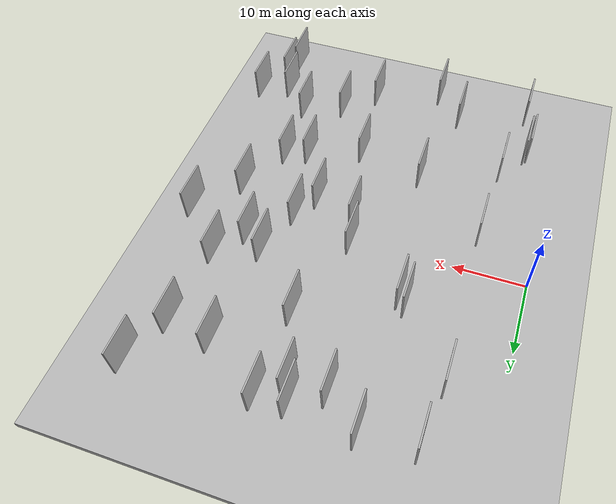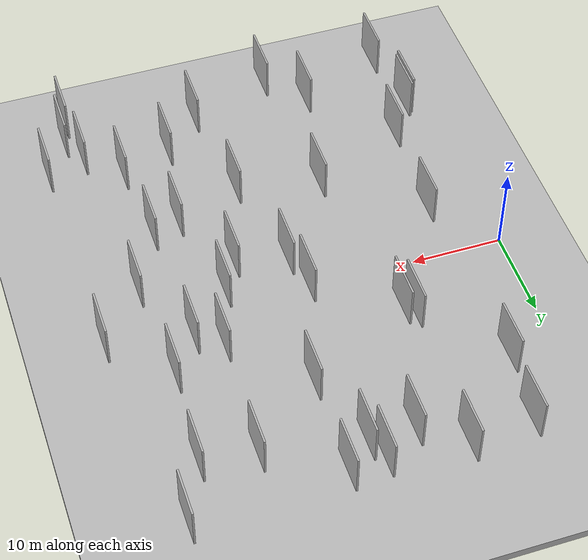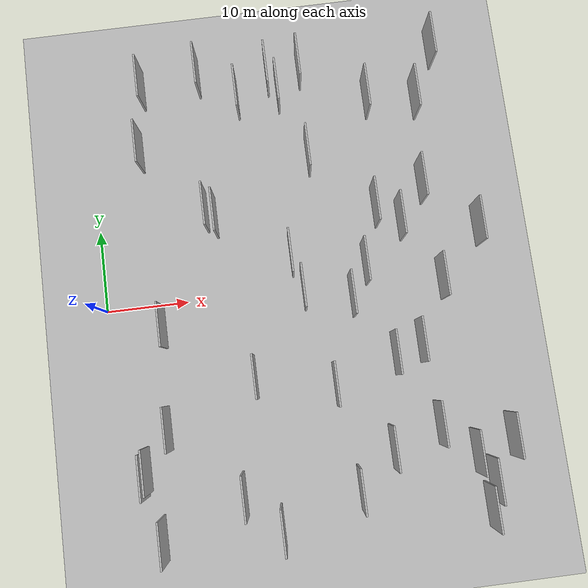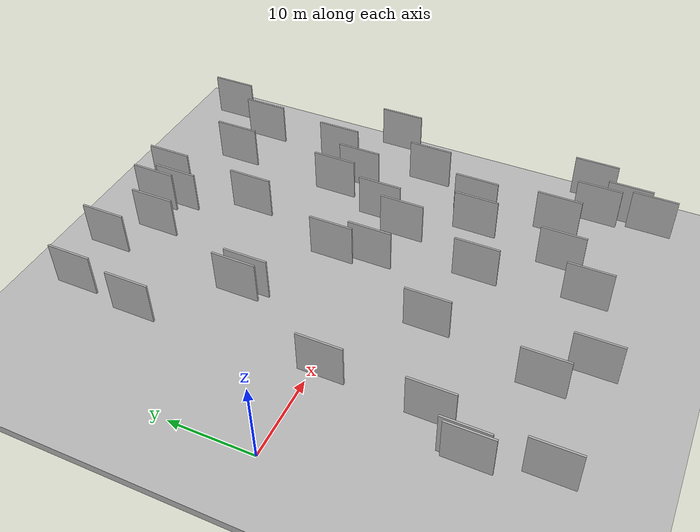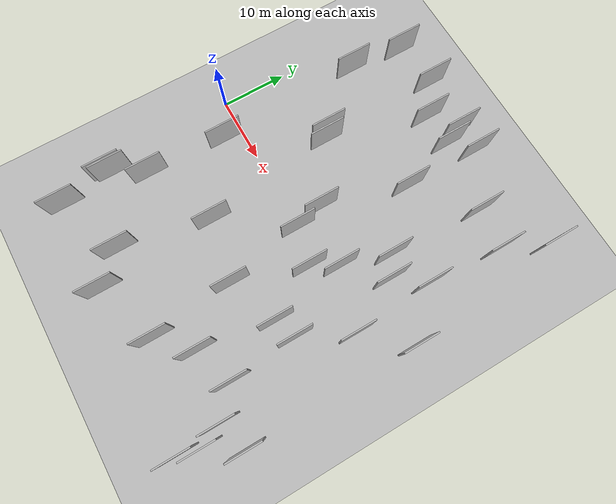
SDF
<?xml version="1.0" encoding="utf-8"?>

<sdf version="1.6">

   <world name="default">

      <gui fullscreen="0">

         <camera name="user_camera">

            <pose>-15 0 4.57585 0 0 0</pose>

            <view_controller>orbit</view_controller>

         </camera>

      </gui>

      <scene>

         <sky>

           <clouds>

             <speed>12</speed>

           </clouds>

         </sky>

         <ambient>0.4 0.4 0.4 1</ambient>

         <background>0.7 0.7 0.7 1</background>

         <shadows>1</shadows>

      </scene>

      <gravity>0 0 -9.8066</gravity>

      <magnetic_field>6e-06 2.3e-05 -4.2e-05</magnetic_field>

      <physics default="0" name="default_physics" type="ode">

         <ode>

            <solver>

               <type>quick</type>

               <iters>10</iters>

               <sor>1.0</sor>

               <use_dynamic_moi_rescaling>0</use_dynamic_moi_rescaling>

            </solver>

            <constraints>

               <cfm>0</cfm>

               <erp>0.2</erp>

               <contact_max_correcting_vel>100</contact_max_correcting_vel>

               <contact_surface_layer>0.001</contact_surface_layer>

            </constraints>

         </ode>

         <max_step_size>0.004</max_step_size>

         <real_time_factor>1</real_time_factor>

         <real_time_update_rate>250</real_time_update_rate>

      </physics>

      <light name="sun" type="directional">

         <cast_shadows>1</cast_shadows>

         <pose>0 0 10 0 0 0</pose>

         <diffuse>0.8 0.8 0.8 1</diffuse>

         <specular>0.2 0.2 0.2 1</specular>

         <attenuation>

            <range>1000</range>

            <constant>0.9</constant>

            <linear>0.01</linear>

            <quadratic>0.001</quadratic>

         </attenuation>

         <direction>-0.5 0.1 -0.9</direction>

      </light>

      <include>

         <name>ground_plane_1</name>

         <uri>model://HANNAS_ground_plane</uri>

         <pose>0 0 0  0 0 0</pose>

      </include>

      <include>

         <name>ground_plane_2</name>

         <uri>model://HANNAS_ground_plane</uri>

         <pose>100 0 0  0 0 0</pose>

      </include>

      <model name="HANNAS_wall_1">

         <static>1</static>

         <pose frame="">7.9662 25.6278 5.0 0.000000 0.000000 1.570796</pose>

         <link name="link">

            <pose frame="">0 0 2.50 0 0 0</pose>

            <collision name="collision">

               <geometry>

                  <box>

                     <size>5.00 0.2 5.00</size>

                  </box>

               </geometry>

               <max_contacts>10</max_contacts>

               <surface>

                  <contact>

                     <ode/>

                  </contact>

                  <bounce/>

                  <friction>

                     <torsional>

                        <ode/>

                     </torsional>

                     <ode/>

                  </friction>

               </surface>

            </collision>

            <visual name="visual">

               <cast_shadows>0</cast_shadows>

               <geometry>

                  <box>

                     <size>5.00 0.2 5.00</size>

                  </box>

               </geometry>

               <material>

                  <script>

                     <uri>model://HANNAS_wall/materials/scripts</uri>

                     <uri>model://HANNAS_wall/materials/textures</uri>

                     <name>vrc/HANNAS_wall</name>

                  </script>

               </material>

            </visual>

            <self_collide>0</self_collide>

            <enable_wind>0</enable_wind>

            <kinematic>0</kinematic>

         </link>

      </model>

      <model name="HANNAS_wall_2">

         <static>1</static>

         <pose frame="">17.4288 -10.1757 5.0 0.000000 0.000000 1.570796</pose>

         <link name="link">

            <pose frame="">0 0 2.50 0 0 0</pose>

            <collision name="collision">

               <geometry>

                  <box>

                     <size>5.00 0.2 5.00</size>

                  </box>

               </geometry>

               <max_contacts>10</max_contacts>

               <surface>

                  <contact>

                     <ode/>

                  </contact>

                  <bounce/>

                  <friction>

                     <torsional>

                        <ode/>

                     </torsional>

                     <ode/>

                  </friction>

               </surface>

            </collision>

            <visual name="visual">

               <cast_shadows>0</cast_shadows>

               <geometry>

                  <box>

                     <size>5.00 0.2 5.00</size>

                  </box>

               </geometry>

               <material>

                  <script>

                     <uri>model://HANNAS_wall/materials/scripts</uri>

                     <uri>model://HANNAS_wall/materials/textures</uri>

                     <name>vrc/HANNAS_wall</name>

                  </script>

               </material>

            </visual>

            <self_collide>0</self_collide>

            <enable_wind>0</enable_wind>

            <kinematic>0</kinematic>

         </link>

      </model>

      <model name="HANNAS_wall_3">

         <static>1</static>

         <pose frame="">31.7390 -19.7800 5.0 0.000000 0.000000 1.570796</pose>

         <link name="link">

            <pose frame="">0 0 2.50 0 0 0</pose>

            <collision name="collision">

               <geometry>

                  <box>

                     <size>5.00 0.2 5.00</size>

                  </box>

               </geometry>

               <max_contacts>10</max_contacts>

               <surface>

                  <contact>

                     <ode/>

                  </contact>

                  <bounce/>

                  <friction>

                     <torsional>

                        <ode/>

                     </torsional>

                     <ode/>

                  </friction>

               </surface>

            </collision>

            <visual name="visual">

               <cast_shadows>0</cast_shadows>

               <geometry>

                  <box>

                     <size>5.00 0.2 5.00</size>

                  </box>

               </geometry>

               <material>

                  <script>

                     <uri>model://HANNAS_wall/materials/scripts</uri>

                     <uri>model://HANNAS_wall/materials/textures</uri>

                     <name>vrc/HANNAS_wall</name>

                  </script>

               </material>

            </visual>

            <self_collide>0</self_collide>

            <enable_wind>0</enable_wind>

            <kinematic>0</kinematic>

         </link>

      </model>

      <model name="HANNAS_wall_4">

         <static>1</static>

         <pose frame="">14.9542 8.9273 5.0 0.000000 0.000000 1.570796</pose>

         <link name="link">

            <pose frame="">0 0 2.50 0 0 0</pose>

            <collision name="collision">

               <geometry>

                  <box>

                     <size>5.00 0.2 5.00</size>

                  </box>

               </geometry>

               <max_contacts>10</max_contacts>

               <surface>

                  <contact>

                     <ode/>

                  </contact>

                  <bounce/>

                  <friction>

                     <torsional>

                        <ode/>

                     </torsional>

                     <ode/>

                  </friction>

               </surface>

            </collision>

            <visual name="visual">

               <cast_shadows>0</cast_shadows>

               <geometry>

                  <box>

                     <size>5.00 0.2 5.00</size>

                  </box>

               </geometry>

               <material>

                  <script>

                     <uri>model://HANNAS_wall/materials/scripts</uri>

                     <uri>model://HANNAS_wall/materials/textures</uri>

                     <name>vrc/HANNAS_wall</name>

                  </script>

               </material>

            </visual>

            <self_collide>0</self_collide>

            <enable_wind>0</enable_wind>

            <kinematic>0</kinematic>

         </link>

      </model>

      <model name="HANNAS_wall_5">

         <static>1</static>

         <pose frame="">26.3158 -12.0907 5.0 0.000000 0.000000 1.570796</pose>

         <link name="link">

            <pose frame="">0 0 2.50 0 0 0</pose>

            <collision name="collision">

               <geometry>

                  <box>

                     <size>5.00 0.2 5.00</size>

                  </box>

               </geometry>

               <max_contacts>10</max_contacts>

               <surface>

                  <contact>

                     <ode/>

                  </contact>

                  <bounce/>

                  <friction>

                     <torsional>

                        <ode/>

                     </torsional>

                     <ode/>

                  </friction>

               </surface>

            </collision>

            <visual name="visual">

               <cast_shadows>0</cast_shadows>

               <geometry>

                  <box>

                     <size>5.00 0.2 5.00</size>

                  </box>

               </geometry>

               <material>

                  <script>

                     <uri>model://HANNAS_wall/materials/scripts</uri>

                     <uri>model://HANNAS_wall/materials/textures</uri>

                     <name>vrc/HANNAS_wall</name>

                  </script>

               </material>

            </visual>

            <self_collide>0</self_collide>

            <enable_wind>0</enable_wind>

            <kinematic>0</kinematic>

         </link>

      </model>

      <model name="HANNAS_wall_6">

         <static>1</static>

         <pose frame="">44.9764 4.1764 5.0 0.000000 0.000000 1.570796</pose>

         <link name="link">

            <pose frame="">0 0 2.50 0 0 0</pose>

            <collision name="collision">

               <geometry>

                  <box>

                     <size>5.00 0.2 5.00</size>

                  </box>

               </geometry>

               <max_contacts>10</max_contacts>

               <surface>

                  <contact>

                     <ode/>

                  </contact>

                  <bounce/>

                  <friction>

                     <torsional>

                        <ode/>

                     </torsional>

                     <ode/>

                  </friction>

               </surface>

            </collision>

            <visual name="visual">

               <cast_shadows>0</cast_shadows>

               <geometry>

                  <box>

                     <size>5.00 0.2 5.00</size>

                  </box>

               </geometry>

               <material>

                  <script>

                     <uri>model://HANNAS_wall/materials/scripts</uri>

                     <uri>model://HANNAS_wall/materials/textures</uri>

                     <name>vrc/HANNAS_wall</name>

                  </script>

               </material>

            </visual>

            <self_collide>0</self_collide>

            <enable_wind>0</enable_wind>

            <kinematic>0</kinematic>

         </link>

      </model>

      <model name="HANNAS_wall_7">

         <static>1</static>

         <pose frame="">34.2695 21.2413 5.0 0.000000 0.000000 1.570796</pose>

         <link name="link">

            <pose frame="">0 0 2.50 0 0 0</pose>

            <collision name="collision">

               <geometry>

                  <box>

                     <size>5.00 0.2 5.00</size>

                  </box>

               </geometry>

               <max_contacts>10</max_contacts>

               <surface>

                  <contact>

                     <ode/>

                  </contact>

                  <bounce/>

                  <friction>

                     <torsional>

                        <ode/>

                     </torsional>

                     <ode/>

                  </friction>

               </surface>

            </collision>

            <visual name="visual">

               <cast_shadows>0</cast_shadows>

               <geometry>

                  <box>

                     <size>5.00 0.2 5.00</size>

                  </box>

               </geometry>

               <material>

                  <script>

                     <uri>model://HANNAS_wall/materials/scripts</uri>

                     <uri>model://HANNAS_wall/materials/textures</uri>

                     <name>vrc/HANNAS_wall</name>

                  </script>

               </material>

            </visual>

            <self_collide>0</self_collide>

            <enable_wind>0</enable_wind>

            <kinematic>0</kinematic>

         </link>

      </model>

      <model name="HANNAS_wall_8">

         <static>1</static>

         <pose frame="">31.4696 1.2209 5.0 0.000000 0.000000 1.570796</pose>

         <link name="link">

            <pose frame="">0 0 2.50 0 0 0</pose>

            <collision name="collision">

               <geometry>

                  <box>

                     <size>5.00 0.2 5.00</size>

                  </box>

               </geometry>

               <max_contacts>10</max_contacts>

               <surface>

                  <contact>

                     <ode/>

                  </contact>

                  <bounce/>

                  <friction>

                     <torsional>

                        <ode/>

                     </torsional>

                     <ode/>

                  </friction>

               </surface>

            </collision>

            <visual name="visual">

               <cast_shadows>0</cast_shadows>

               <geometry>

                  <box>

                     <size>5.00 0.2 5.00</size>

                  </box>

               </geometry>

               <material>

                  <script>

                     <uri>model://HANNAS_wall/materials/scripts</uri>

                     <uri>model://HANNAS_wall/materials/textures</uri>

                     <name>vrc/HANNAS_wall</name>

                  </script>

               </material>

            </visual>

            <self_collide>0</self_collide>

            <enable_wind>0</enable_wind>

            <kinematic>0</kinematic>

         </link>

      </model>

      <model name="HANNAS_wall_9">

         <static>1</static>

         <pose frame="">13.9549 9.7261 5.0 0.000000 0.000000 1.570796</pose>

         <link name="link">

            <pose frame="">0 0 2.50 0 0 0</pose>

            <collision name="collision">

               <geometry>

                  <box>

                     <size>5.00 0.2 5.00</size>

                  </box>

               </geometry>

               <max_contacts>10</max_contacts>

               <surface>

                  <contact>

                     <ode/>

                  </contact>

                  <bounce/>

                  <friction>

                     <torsional>

                        <ode/>

                     </torsional>

                     <ode/>

                  </friction>

               </surface>

            </collision>

            <visual name="visual">

               <cast_shadows>0</cast_shadows>

               <geometry>

                  <box>

                     <size>5.00 0.2 5.00</size>

                  </box>

               </geometry>

               <material>

                  <script>

                     <uri>model://HANNAS_wall/materials/scripts</uri>

                     <uri>model://HANNAS_wall/materials/textures</uri>

                     <name>vrc/HANNAS_wall</name>

                  </script>

               </material>

            </visual>

            <self_collide>0</self_collide>

            <enable_wind>0</enable_wind>

            <kinematic>0</kinematic>

         </link>

      </model>

      <model name="HANNAS_wall_10">

         <static>1</static>

         <pose frame="">39.9414 -1.5383 5.0 0.000000 0.000000 1.570796</pose>

         <link name="link">

            <pose frame="">0 0 2.50 0 0 0</pose>

            <collision name="collision">

               <geometry>

                  <box>

                     <size>5.00 0.2 5.00</size>

                  </box>

               </geometry>

               <max_contacts>10</max_contacts>

               <surface>

                  <contact>

                     <ode/>

                  </contact>

                  <bounce/>

                  <friction>

                     <torsional>

                        <ode/>

                     </torsional>

                     <ode/>

                  </friction>

               </surface>

            </collision>

            <visual name="visual">

               <cast_shadows>0</cast_shadows>

               <geometry>

                  <box>

                     <size>5.00 0.2 5.00</size>

                  </box>

               </geometry>

               <material>

                  <script>

                     <uri>model://HANNAS_wall/materials/scripts</uri>

                     <uri>model://HANNAS_wall/materials/textures</uri>

                     <name>vrc/HANNAS_wall</name>

                  </script>

               </material>

            </visual>

            <self_collide>0</self_collide>

            <enable_wind>0</enable_wind>

            <kinematic>0</kinematic>

         </link>

      </model>

      <model name="HANNAS_wall_11">

         <static>1</static>

         <pose frame="">42.2386 -24.5002 5.0 0.000000 0.000000 1.570796</pose>

         <link name="link">

            <pose frame="">0 0 2.50 0 0 0</pose>

            <collision name="collision">

               <geometry>

                  <box>

                     <size>5.00 0.2 5.00</size>

                  </box>

               </geometry>

               <max_contacts>10</max_contacts>

               <surface>

                  <contact>

                     <ode/>

                  </contact>

                  <bounce/>

                  <friction>

                     <torsional>

                        <ode/>

                     </torsional>

                     <ode/>

                  </friction>

               </surface>

            </collision>

            <visual name="visual">

               <cast_shadows>0</cast_shadows>

               <geometry>

                  <box>

                     <size>5.00 0.2 5.00</size>

                  </box>

               </geometry>

               <material>

                  <script>

                     <uri>model://HANNAS_wall/materials/scripts</uri>

                     <uri>model://HANNAS_wall/materials/textures</uri>

                     <name>vrc/HANNAS_wall</name>

                  </script>

               </material>

            </visual>

            <self_collide>0</self_collide>

            <enable_wind>0</enable_wind>

            <kinematic>0</kinematic>

         </link>

      </model>

      <model name="HANNAS_wall_12">

         <static>1</static>

         <pose frame="">23.9651 23.2438 5.0 0.000000 0.000000 1.570796</pose>

         <link name="link">

            <pose frame="">0 0 2.50 0 0 0</pose>

            <collision name="collision">

               <geometry>

                  <box>

                     <size>5.00 0.2 5.00</size>

                  </box>

               </geometry>

               <max_contacts>10</max_contacts>

               <surface>

                  <contact>

                     <ode/>

                  </contact>

                  <bounce/>

                  <friction>

                     <torsional>

                        <ode/>

                     </torsional>

                     <ode/>

                  </friction>

               </surface>

            </collision>

            <visual name="visual">

               <cast_shadows>0</cast_shadows>

               <geometry>

                  <box>

                     <size>5.00 0.2 5.00</size>

                  </box>

               </geometry>

               <material>

                  <script>

                     <uri>model://HANNAS_wall/materials/scripts</uri>

                     <uri>model://HANNAS_wall/materials/textures</uri>

                     <name>vrc/HANNAS_wall</name>

                  </script>

               </material>

            </visual>

            <self_collide>0</self_collide>

            <enable_wind>0</enable_wind>

            <kinematic>0</kinematic>

         </link>

      </model>

      <model name="HANNAS_wall_13">

         <static>1</static>

         <pose frame="">24.0621 -0.8791 5.0 0.000000 0.000000 1.570796</pose>

         <link name="link">

            <pose frame="">0 0 2.50 0 0 0</pose>

            <collision name="collision">

               <geometry>

                  <box>

                     <size>5.00 0.2 5.00</size>

                  </box>

               </geometry>

               <max_contacts>10</max_contacts>

               <surface>

                  <contact>

                     <ode/>

                  </contact>

                  <bounce/>

                  <friction>

                     <torsional>

                        <ode/>

                     </torsional>

                     <ode/>

                  </friction>

               </surface>

            </collision>

            <visual name="visual">

               <cast_shadows>0</cast_shadows>

               <geometry>

                  <box>

                     <size>5.00 0.2 5.00</size>

                  </box>

               </geometry>

               <material>

                  <script>

                     <uri>model://HANNAS_wall/materials/scripts</uri>

                     <uri>model://HANNAS_wall/materials/textures</uri>

                     <name>vrc/HANNAS_wall</name>

                  </script>

               </material>

            </visual>

            <self_collide>0</self_collide>

            <enable_wind>0</enable_wind>

            <kinematic>0</kinematic>

         </link>

      </model>

      <model name="HANNAS_wall_14">

         <static>1</static>

         <pose frame="">14.7877 -22.8990 5.0 0.000000 0.000000 1.570796</pose>

         <link name="link">

            <pose frame="">0 0 2.50 0 0 0</pose>

            <collision name="collision">

               <geometry>

                  <box>

                     <size>5.00 0.2 5.00</size>

                  </box>

               </geometry>

               <max_contacts>10</max_contacts>

               <surface>

                  <contact>

                     <ode/>

                  </contact>

                  <bounce/>

                  <friction>

                     <torsional>

                        <ode/>

                     </torsional>

                     <ode/>

                  </friction>

               </surface>

            </collision>

            <visual name="visual">

               <cast_shadows>0</cast_shadows>

               <geometry>

                  <box>

                     <size>5.00 0.2 5.00</size>

                  </box>

               </geometry>

               <material>

                  <script>

                     <uri>model://HANNAS_wall/materials/scripts</uri>

                     <uri>model://HANNAS_wall/materials/textures</uri>

                     <name>vrc/HANNAS_wall</name>

                  </script>

               </material>

            </visual>

            <self_collide>0</self_collide>

            <enable_wind>0</enable_wind>

            <kinematic>0</kinematic>

         </link>

      </model>

      <model name="HANNAS_wall_15">

         <static>1</static>

         <pose frame="">7.6786 -3.1978 5.0 0.000000 0.000000 1.570796</pose>

         <link name="link">

            <pose frame="">0 0 2.50 0 0 0</pose>

            <collision name="collision">

               <geometry>

                  <box>

                     <size>5.00 0.2 5.00</size>

                  </box>

               </geometry>

               <max_contacts>10</max_contacts>

               <surface>

                  <contact>

                     <ode/>

                  </contact>

                  <bounce/>

                  <friction>

                     <torsional>

                        <ode/>

                     </torsional>

                     <ode/>

                  </friction>

               </surface>

            </collision>

            <visual name="visual">

               <cast_shadows>0</cast_shadows>

               <geometry>

                  <box>

                     <size>5.00 0.2 5.00</size>

                  </box>

               </geometry>

               <material>

                  <script>

                     <uri>model://HANNAS_wall/materials/scripts</uri>

                     <uri>model://HANNAS_wall/materials/textures</uri>

                     <name>vrc/HANNAS_wall</name>

                  </script>

               </material>

            </visual>

            <self_collide>0</self_collide>

            <enable_wind>0</enable_wind>

            <kinematic>0</kinematic>

         </link>

      </model>

      <model name="HANNAS_wall_16">

         <static>1</static>

         <pose frame="">26.7838 25.9021 5.0 0.000000 0.000000 1.570796</pose>

         <link name="link">

            <pose frame="">0 0 2.50 0 0 0</pose>

            <collision name="collision">

               <geometry>

                  <box>

                     <size>5.00 0.2 5.00</size>

                  </box>

               </geometry>

               <max_contacts>10</max_contacts>

               <surface>

                  <contact>

                     <ode/>

                  </contact>

                  <bounce/>

                  <friction>

                     <torsional>

                        <ode/>

                     </torsional>

                     <ode/>

                  </friction>

               </surface>

            </collision>

            <visual name="visual">

               <cast_shadows>0</cast_shadows>

               <geometry>

                  <box>

                     <size>5.00 0.2 5.00</size>

                  </box>

               </geometry>

               <material>

                  <script>

                     <uri>model://HANNAS_wall/materials/scripts</uri>

                     <uri>model://HANNAS_wall/materials/textures</uri>

                     <name>vrc/HANNAS_wall</name>

                  </script>

               </material>

            </visual>

            <self_collide>0</self_collide>

            <enable_wind>0</enable_wind>

            <kinematic>0</kinematic>

         </link>

      </model>

      <model name="HANNAS_wall_17">

         <static>1</static>

         <pose frame="">27.5749 -23.7502 5.0 0.000000 0.000000 1.570796</pose>

         <link name="link">

            <pose frame="">0 0 2.50 0 0 0</pose>

            <collision name="collision">

               <geometry>

                  <box>

                     <size>5.00 0.2 5.00</size>

                  </box>

               </geometry>

               <max_contacts>10</max_contacts>

               <surface>

                  <contact>

                     <ode/>

                  </contact>

                  <bounce/>

                  <friction>

                     <torsional>

                        <ode/>

                     </torsional>

                     <ode/>

                  </friction>

               </surface>

            </collision>

            <visual name="visual">

               <cast_shadows>0</cast_shadows>

               <geometry>

                  <box>

                     <size>5.00 0.2 5.00</size>

                  </box>

               </geometry>

               <material>

                  <script>

                     <uri>model://HANNAS_wall/materials/scripts</uri>

                     <uri>model://HANNAS_wall/materials/textures</uri>

                     <name>vrc/HANNAS_wall</name>

                  </script>

               </material>

            </visual>

            <self_collide>0</self_collide>

            <enable_wind>0</enable_wind>

            <kinematic>0</kinematic>

         </link>

      </model>

      <model name="HANNAS_wall_18">

         <static>1</static>

         <pose frame="">18.5863 -26.9090 5.0 0.000000 0.000000 1.570796</pose>

         <link name="link">

            <pose frame="">0 0 2.50 0 0 0</pose>

            <collision name="collision">

               <geometry>

                  <box>

                     <size>5.00 0.2 5.00</size>

                  </box>

               </geometry>

               <max_contacts>10</max_contacts>

               <surface>

                  <contact>

                     <ode/>

                  </contact>

                  <bounce/>

                  <friction>

                     <torsional>

                        <ode/>

                     </torsional>

                     <ode/>

                  </friction>

               </surface>

            </collision>

            <visual name="visual">

               <cast_shadows>0</cast_shadows>

               <geometry>

                  <box>

                     <size>5.00 0.2 5.00</size>

                  </box>

               </geometry>

               <material>

                  <script>

                     <uri>model://HANNAS_wall/materials/scripts</uri>

                     <uri>model://HANNAS_wall/materials/textures</uri>

                     <name>vrc/HANNAS_wall</name>

                  </script>

               </material>

            </visual>

            <self_collide>0</self_collide>

            <enable_wind>0</enable_wind>

            <kinematic>0</kinematic>

         </link>

      </model>

      <model name="HANNAS_wall_19">

         <static>1</static>

         <pose frame="">22.9480 25.5304 5.0 0.000000 0.000000 1.570796</pose>

         <link name="link">

            <pose frame="">0 0 2.50 0 0 0</pose>

            <collision name="collision">

               <geometry>

                  <box>

                     <size>5.00 0.2 5.00</size>

                  </box>

               </geometry>

               <max_contacts>10</max_contacts>

               <surface>

                  <contact>

                     <ode/>

                  </contact>

                  <bounce/>

                  <friction>

                     <torsional>

                        <ode/>

                     </torsional>

                     <ode/>

                  </friction>

               </surface>

            </collision>

            <visual name="visual">

               <cast_shadows>0</cast_shadows>

               <geometry>

                  <box>

                     <size>5.00 0.2 5.00</size>

                  </box>

               </geometry>

               <material>

                  <script>

                     <uri>model://HANNAS_wall/materials/scripts</uri>

                     <uri>model://HANNAS_wall/materials/textures</uri>

                     <name>vrc/HANNAS_wall</name>

                  </script>

               </material>

            </visual>

            <self_collide>0</self_collide>

            <enable_wind>0</enable_wind>

            <kinematic>0</kinematic>

         </link>

      </model>

      <model name="HANNAS_wall_20">

         <static>1</static>

         <pose frame="">45.0355 -19.9934 5.0 0.000000 0.000000 1.570796</pose>

         <link name="link">

            <pose frame="">0 0 2.50 0 0 0</pose>

            <collision name="collision">

               <geometry>

                  <box>

                     <size>5.00 0.2 5.00</size>

                  </box>

               </geometry>

               <max_contacts>10</max_contacts>

               <surface>

                  <contact>

                     <ode/>

                  </contact>

                  <bounce/>

                  <friction>

                     <torsional>

                        <ode/>

                     </torsional>

                     <ode/>

                  </friction>

               </surface>

            </collision>

            <visual name="visual">

               <cast_shadows>0</cast_shadows>

               <geometry>

                  <box>

                     <size>5.00 0.2 5.00</size>

                  </box>

               </geometry>

               <material>

                  <script>

                     <uri>model://HANNAS_wall/materials/scripts</uri>

                     <uri>model://HANNAS_wall/materials/textures</uri>

                     <name>vrc/HANNAS_wall</name>

                  </script>

               </material>

            </visual>

            <self_collide>0</self_collide>

            <enable_wind>0</enable_wind>

            <kinematic>0</kinematic>

         </link>

      </model>

      <model name="HANNAS_wall_21">

         <static>1</static>

         <pose frame="">14.7298 26.3691 5.0 0.000000 0.000000 1.570796</pose>

         <link name="link">

            <pose frame="">0 0 2.50 0 0 0</pose>

            <collision name="collision">

               <geometry>

                  <box>

                     <size>5.00 0.2 5.00</size>

                  </box>

               </geometry>

               <max_contacts>10</max_contacts>

               <surface>

                  <contact>

                     <ode/>

                  </contact>

                  <bounce/>

                  <friction>

                     <torsional>

                        <ode/>

                     </torsional>

                     <ode/>

                  </friction>

               </surface>

            </collision>

            <visual name="visual">

               <cast_shadows>0</cast_shadows>

               <geometry>

                  <box>

                     <size>5.00 0.2 5.00</size>

                  </box>

               </geometry>

               <material>

                  <script>

                     <uri>model://HANNAS_wall/materials/scripts</uri>

                     <uri>model://HANNAS_wall/materials/textures</uri>

                     <name>vrc/HANNAS_wall</name>

                  </script>

               </material>

            </visual>

            <self_collide>0</self_collide>

            <enable_wind>0</enable_wind>

            <kinematic>0</kinematic>

         </link>

      </model>

      <model name="HANNAS_wall_22">

         <static>1</static>

         <pose frame="">36.1924 5.9278 5.0 0.000000 0.000000 1.570796</pose>

         <link name="link">

            <pose frame="">0 0 2.50 0 0 0</pose>

            <collision name="collision">

               <geometry>

                  <box>

                     <size>5.00 0.2 5.00</size>

                  </box>

               </geometry>

               <max_contacts>10</max_contacts>

               <surface>

                  <contact>

                     <ode/>

                  </contact>

                  <bounce/>

                  <friction>

                     <torsional>

                        <ode/>

                     </torsional>

                     <ode/>

                  </friction>

               </surface>

            </collision>

            <visual name="visual">

               <cast_shadows>0</cast_shadows>

               <geometry>

                  <box>

                     <size>5.00 0.2 5.00</size>

                  </box>

               </geometry>

               <material>

                  <script>

                     <uri>model://HANNAS_wall/materials/scripts</uri>

                     <uri>model://HANNAS_wall/materials/textures</uri>

                     <name>vrc/HANNAS_wall</name>

                  </script>

               </material>

            </visual>

            <self_collide>0</self_collide>

            <enable_wind>0</enable_wind>

            <kinematic>0</kinematic>

         </link>

      </model>

      <model name="HANNAS_wall_23">

         <static>1</static>

         <pose frame="">39.2225 10.0013 5.0 0.000000 0.000000 1.570796</pose>

         <link name="link">

            <pose frame="">0 0 2.50 0 0 0</pose>

            <collision name="collision">

               <geometry>

                  <box>

                     <size>5.00 0.2 5.00</size>

                  </box>

               </geometry>

               <max_contacts>10</max_contacts>

               <surface>

                  <contact>

                     <ode/>

                  </contact>

                  <bounce/>

                  <friction>

                     <torsional>

                        <ode/>

                     </torsional>

                     <ode/>

                  </friction>

               </surface>

            </collision>

            <visual name="visual">

               <cast_shadows>0</cast_shadows>

               <geometry>

                  <box>

                     <size>5.00 0.2 5.00</size>

                  </box>

               </geometry>

               <material>

                  <script>

                     <uri>model://HANNAS_wall/materials/scripts</uri>

                     <uri>model://HANNAS_wall/materials/textures</uri>

                     <name>vrc/HANNAS_wall</name>

                  </script>

               </material>

            </visual>

            <self_collide>0</self_collide>

            <enable_wind>0</enable_wind>

            <kinematic>0</kinematic>

         </link>

      </model>

      <model name="HANNAS_wall_24">

         <static>1</static>

         <pose frame="">42.7109 26.5847 5.0 0.000000 0.000000 1.570796</pose>

         <link name="link">

            <pose frame="">0 0 2.50 0 0 0</pose>

            <collision name="collision">

               <geometry>

                  <box>

                     <size>5.00 0.2 5.00</size>

                  </box>

               </geometry>

               <max_contacts>10</max_contacts>

               <surface>

                  <contact>

                     <ode/>

                  </contact>

                  <bounce/>

                  <friction>

                     <torsional>

                        <ode/>

                     </torsional>

                     <ode/>

                  </friction>

               </surface>

            </collision>

            <visual name="visual">

               <cast_shadows>0</cast_shadows>

               <geometry>

                  <box>

                     <size>5.00 0.2 5.00</size>

                  </box>

               </geometry>

               <material>

                  <script>

                     <uri>model://HANNAS_wall/materials/scripts</uri>

                     <uri>model://HANNAS_wall/materials/textures</uri>

                     <name>vrc/HANNAS_wall</name>

                  </script>

               </material>

            </visual>

            <self_collide>0</self_collide>

            <enable_wind>0</enable_wind>

            <kinematic>0</kinematic>

         </link>

      </model>

      <model name="HANNAS_wall_25">

         <static>1</static>

         <pose frame="">5.4973 -26.5228 5.0 0.000000 0.000000 1.570796</pose>

         <link name="link">

            <pose frame="">0 0 2.50 0 0 0</pose>

            <collision name="collision">

               <geometry>

                  <box>

                     <size>5.00 0.2 5.00</size>

                  </box>

               </geometry>

               <max_contacts>10</max_contacts>

               <surface>

                  <contact>

                     <ode/>

                  </contact>

                  <bounce/>

                  <friction>

                     <torsional>

                        <ode/>

                     </torsional>

                     <ode/>

                  </friction>

               </surface>

            </collision>

            <visual name="visual">

               <cast_shadows>0</cast_shadows>

               <geometry>

                  <box>

                     <size>5.00 0.2 5.00</size>

                  </box>

               </geometry>

               <material>

                  <script>

                     <uri>model://HANNAS_wall/materials/scripts</uri>

                     <uri>model://HANNAS_wall/materials/textures</uri>

                     <name>vrc/HANNAS_wall</name>

                  </script>

               </material>

            </visual>

            <self_collide>0</self_collide>

            <enable_wind>0</enable_wind>

            <kinematic>0</kinematic>

         </link>

      </model>

      <model name="HANNAS_wall_26">

         <static>1</static>

         <pose frame="">33.5200 7.8382 5.0 0.000000 0.000000 1.570796</pose>

         <link name="link">

            <pose frame="">0 0 2.50 0 0 0</pose>

            <collision name="collision">

               <geometry>

                  <box>

                     <size>5.00 0.2 5.00</size>

                  </box>

               </geometry>

               <max_contacts>10</max_contacts>

               <surface>

                  <contact>

                     <ode/>

                  </contact>

                  <bounce/>

                  <friction>

                     <torsional>

                        <ode/>

                     </torsional>

                     <ode/>

                  </friction>

               </surface>

            </collision>

            <visual name="visual">

               <cast_shadows>0</cast_shadows>

               <geometry>

                  <box>

                     <size>5.00 0.2 5.00</size>

                  </box>

               </geometry>

               <material>

                  <script>

                     <uri>model://HANNAS_wall/materials/scripts</uri>

                     <uri>model://HANNAS_wall/materials/textures</uri>

                     <name>vrc/HANNAS_wall</name>

                  </script>

               </material>

            </visual>

            <self_collide>0</self_collide>

            <enable_wind>0</enable_wind>

            <kinematic>0</kinematic>

         </link>

      </model>

      <model name="HANNAS_wall_27">

         <static>1</static>

         <pose frame="">23.1213 3.2013 5.0 0.000000 0.000000 1.570796</pose>

         <link name="link">

            <pose frame="">0 0 2.50 0 0 0</pose>

            <collision name="collision">

               <geometry>

                  <box>

                     <size>5.00 0.2 5.00</size>

                  </box>

               </geometry>

               <max_contacts>10</max_contacts>

               <surface>

                  <contact>

                     <ode/>

                  </contact>

                  <bounce/>

                  <friction>

                     <torsional>

                        <ode/>

                     </torsional>

                     <ode/>

                  </friction>

               </surface>

            </collision>

            <visual name="visual">

               <cast_shadows>0</cast_shadows>

               <geometry>

                  <box>

                     <size>5.00 0.2 5.00</size>

                  </box>

               </geometry>

               <material>

                  <script>

                     <uri>model://HANNAS_wall/materials/scripts</uri>

                     <uri>model://HANNAS_wall/materials/textures</uri>

                     <name>vrc/HANNAS_wall</name>

                  </script>

               </material>

            </visual>

            <self_collide>0</self_collide>

            <enable_wind>0</enable_wind>

            <kinematic>0</kinematic>

         </link>

      </model>

      <model name="HANNAS_wall_28">

         <static>1</static>

         <pose frame="">7.0568 17.9147 5.0 0.000000 0.000000 1.570796</pose>

         <link name="link">

            <pose frame="">0 0 2.50 0 0 0</pose>

            <collision name="collision">

               <geometry>

                  <box>

                     <size>5.00 0.2 5.00</size>

                  </box>

               </geometry>

               <max_contacts>10</max_contacts>

               <surface>

                  <contact>

                     <ode/>

                  </contact>

                  <bounce/>

                  <friction>

                     <torsional>

                        <ode/>

                     </torsional>

                     <ode/>

                  </friction>

               </surface>

            </collision>

            <visual name="visual">

               <cast_shadows>0</cast_shadows>

               <geometry>

                  <box>

                     <size>5.00 0.2 5.00</size>

                  </box>

               </geometry>

               <material>

                  <script>

                     <uri>model://HANNAS_wall/materials/scripts</uri>

                     <uri>model://HANNAS_wall/materials/textures</uri>

                     <name>vrc/HANNAS_wall</name>

                  </script>

               </material>

            </visual>

            <self_collide>0</self_collide>

            <enable_wind>0</enable_wind>

            <kinematic>0</kinematic>

         </link>

      </model>

      <model name="HANNAS_wall_29">

         <static>1</static>

         <pose frame="">19.1136 23.0849 5.0 0.000000 0.000000 1.570796</pose>

         <link name="link">

            <pose frame="">0 0 2.50 0 0 0</pose>

            <collision name="collision">

               <geometry>

                  <box>

                     <size>5.00 0.2 5.00</size>

                  </box>

               </geometry>

               <max_contacts>10</max_contacts>

               <surface>

                  <contact>

                     <ode/>

                  </contact>

                  <bounce/>

                  <friction>

                     <torsional>

                        <ode/>

                     </torsional>

                     <ode/>

                  </friction>

               </surface>

            </collision>

            <visual name="visual">

               <cast_shadows>0</cast_shadows>

               <geometry>

                  <box>

                     <size>5.00 0.2 5.00</size>

                  </box>

               </geometry>

               <material>

                  <script>

                     <uri>model://HANNAS_wall/materials/scripts</uri>

                     <uri>model://HANNAS_wall/materials/textures</uri>

                     <name>vrc/HANNAS_wall</name>

                  </script>

               </material>

            </visual>

            <self_collide>0</self_collide>

            <enable_wind>0</enable_wind>

            <kinematic>0</kinematic>

         </link>

      </model>

      <model name="HANNAS_wall_30">

         <static>1</static>

         <pose frame="">7.1251 -14.6540 5.0 0.000000 0.000000 1.570796</pose>

         <link name="link">

            <pose frame="">0 0 2.50 0 0 0</pose>

            <collision name="collision">

               <geometry>

                  <box>

                     <size>5.00 0.2 5.00</size>

                  </box>

               </geometry>

               <max_contacts>10</max_contacts>

               <surface>

                  <contact>

                     <ode/>

                  </contact>

                  <bounce/>

                  <friction>

                     <torsional>

                        <ode/>

                     </torsional>

                     <ode/>

                  </friction>

               </surface>

            </collision>

            <visual name="visual">

               <cast_shadows>0</cast_shadows>

               <geometry>

                  <box>

                     <size>5.00 0.2 5.00</size>

                  </box>

               </geometry>

               <material>

                  <script>

                     <uri>model://HANNAS_wall/materials/scripts</uri>

                     <uri>model://HANNAS_wall/materials/textures</uri>

                     <name>vrc/HANNAS_wall</name>

                  </script>

               </material>

            </visual>

            <self_collide>0</self_collide>

            <enable_wind>0</enable_wind>

            <kinematic>0</kinematic>

         </link>

      </model>

      <model name="HANNAS_wall_31">

         <static>1</static>

         <pose frame="">4.0018 -19.3741 5.0 0.000000 0.000000 1.570796</pose>

         <link name="link">

            <pose frame="">0 0 2.50 0 0 0</pose>

            <collision name="collision">

               <geometry>

                  <box>

                     <size>5.00 0.2 5.00</size>

                  </box>

               </geometry>

               <max_contacts>10</max_contacts>

               <surface>

                  <contact>

                     <ode/>

                  </contact>

                  <bounce/>

                  <friction>

                     <torsional>

                        <ode/>

                     </torsional>

                     <ode/>

                  </friction>

               </surface>

            </collision>

            <visual name="visual">

               <cast_shadows>0</cast_shadows>

               <geometry>

                  <box>

                     <size>5.00 0.2 5.00</size>

                  </box>

               </geometry>

               <material>

                  <script>

                     <uri>model://HANNAS_wall/materials/scripts</uri>

                     <uri>model://HANNAS_wall/materials/textures</uri>

                     <name>vrc/HANNAS_wall</name>

                  </script>

               </material>

            </visual>

            <self_collide>0</self_collide>

            <enable_wind>0</enable_wind>

            <kinematic>0</kinematic>

         </link>

      </model>

      <model name="HANNAS_wall_32">

         <static>1</static>

         <pose frame="">40.8592 -21.3382 5.0 0.000000 0.000000 1.570796</pose>

         <link name="link">

            <pose frame="">0 0 2.50 0 0 0</pose>

            <collision name="collision">

               <geometry>

                  <box>

                     <size>5.00 0.2 5.00</size>

                  </box>

               </geometry>

               <max_contacts>10</max_contacts>

               <surface>

                  <contact>

                     <ode/>

                  </contact>

                  <bounce/>

                  <friction>

                     <torsional>

                        <ode/>

                     </torsional>

                     <ode/>

                  </friction>

               </surface>

            </collision>

            <visual name="visual">

               <cast_shadows>0</cast_shadows>

               <geometry>

                  <box>

                     <size>5.00 0.2 5.00</size>

                  </box>

               </geometry>

               <material>

                  <script>

                     <uri>model://HANNAS_wall/materials/scripts</uri>

                     <uri>model://HANNAS_wall/materials/textures</uri>

                     <name>vrc/HANNAS_wall</name>

                  </script>

               </material>

            </visual>

            <self_collide>0</self_collide>

            <enable_wind>0</enable_wind>

            <kinematic>0</kinematic>

         </link>

      </model>

      <model name="HANNAS_wall_33">

         <static>1</static>

         <pose frame="">39.9774 20.4674 5.0 0.000000 0.000000 1.570796</pose>

         <link name="link">

            <pose frame="">0 0 2.50 0 0 0</pose>

            <collision name="collision">

               <geometry>

                  <box>

                     <size>5.00 0.2 5.00</size>

                  </box>

               </geometry>

               <max_contacts>10</max_contacts>

               <surface>

                  <contact>

                     <ode/>

                  </contact>

                  <bounce/>

                  <friction>

                     <torsional>

                        <ode/>

                     </torsional>

                     <ode/>

                  </friction>

               </surface>

            </collision>

            <visual name="visual">

               <cast_shadows>0</cast_shadows>

               <geometry>

                  <box>

                     <size>5.00 0.2 5.00</size>

                  </box>

               </geometry>

               <material>

                  <script>

                     <uri>model://HANNAS_wall/materials/scripts</uri>

                     <uri>model://HANNAS_wall/materials/textures</uri>

                     <name>vrc/HANNAS_wall</name>

                  </script>

               </material>

            </visual>

            <self_collide>0</self_collide>

            <enable_wind>0</enable_wind>

            <kinematic>0</kinematic>

         </link>

      </model>

      <model name="HANNAS_wall_34">

         <static>1</static>

         <pose frame="">41.5047 -27.3454 5.0 0.000000 0.000000 1.570796</pose>

         <link name="link">

            <pose frame="">0 0 2.50 0 0 0</pose>

            <collision name="collision">

               <geometry>

                  <box>

                     <size>5.00 0.2 5.00</size>

                  </box>

               </geometry>

               <max_contacts>10</max_contacts>

               <surface>

                  <contact>

                     <ode/>

                  </contact>

                  <bounce/>

                  <friction>

                     <torsional>

                        <ode/>

                     </torsional>

                     <ode/>

                  </friction>

               </surface>

            </collision>

            <visual name="visual">

               <cast_shadows>0</cast_shadows>

               <geometry>

                  <box>

                     <size>5.00 0.2 5.00</size>

                  </box>

               </geometry>

               <material>

                  <script>

                     <uri>model://HANNAS_wall/materials/scripts</uri>

                     <uri>model://HANNAS_wall/materials/textures</uri>

                     <name>vrc/HANNAS_wall</name>

                  </script>

               </material>

            </visual>

            <self_collide>0</self_collide>

            <enable_wind>0</enable_wind>

            <kinematic>0</kinematic>

         </link>

      </model>

      <model name="HANNAS_wall_35">

         <static>1</static>

         <pose frame="">37.2322 -17.7998 5.0 0.000000 0.000000 1.570796</pose>

         <link name="link">

            <pose frame="">0 0 2.50 0 0 0</pose>

            <collision name="collision">

               <geometry>

                  <box>

                     <size>5.00 0.2 5.00</size>

                  </box>

               </geometry>

               <max_contacts>10</max_contacts>

               <surface>

                  <contact>

                     <ode/>

                  </contact>

                  <bounce/>

                  <friction>

                     <torsional>

                        <ode/>

                     </torsional>

                     <ode/>

                  </friction>

               </surface>

            </collision>

            <visual name="visual">

               <cast_shadows>0</cast_shadows>

               <geometry>

                  <box>

                     <size>5.00 0.2 5.00</size>

                  </box>

               </geometry>

               <material>

                  <script>

                     <uri>model://HANNAS_wall/materials/scripts</uri>

                     <uri>model://HANNAS_wall/materials/textures</uri>

                     <name>vrc/HANNAS_wall</name>

                  </script>

               </material>

            </visual>

            <self_collide>0</self_collide>

            <enable_wind>0</enable_wind>

            <kinematic>0</kinematic>

         </link>

      </model>

      <model name="HANNAS_wall_36">

         <static>1</static>

         <pose frame="">4.3891 -18.8638 5.0 0.000000 0.000000 1.570796</pose>

         <link name="link">

            <pose frame="">0 0 2.50 0 0 0</pose>

            <collision name="collision">

               <geometry>

                  <box>

                     <size>5.00 0.2 5.00</size>

                  </box>

               </geometry>

               <max_contacts>10</max_contacts>

               <surface>

                  <contact>

                     <ode/>

                  </contact>

                  <bounce/>

                  <friction>

                     <torsional>

                        <ode/>

                     </torsional>

                     <ode/>

                  </friction>

               </surface>

            </collision>

            <visual name="visual">

               <cast_shadows>0</cast_shadows>

               <geometry>

                  <box>

                     <size>5.00 0.2 5.00</size>

                  </box>

               </geometry>

               <material>

                  <script>

                     <uri>model://HANNAS_wall/materials/scripts</uri>

                     <uri>model://HANNAS_wall/materials/textures</uri>

                     <name>vrc/HANNAS_wall</name>

                  </script>

               </material>

            </visual>

            <self_collide>0</self_collide>

            <enable_wind>0</enable_wind>

            <kinematic>0</kinematic>

         </link>

      </model>

      <model name="HANNAS_wall_37">

         <static>1</static>

         <pose frame="">26.5716 15.0302 5.0 0.000000 0.000000 1.570796</pose>

         <link name="link">

            <pose frame="">0 0 2.50 0 0 0</pose>

            <collision name="collision">

               <geometry>

                  <box>

                     <size>5.00 0.2 5.00</size>

                  </box>

               </geometry>

               <max_contacts>10</max_contacts>

               <surface>

                  <contact>

                     <ode/>

                  </contact>

                  <bounce/>

                  <friction>

                     <torsional>

                        <ode/>

                     </torsional>

                     <ode/>

                  </friction>

               </surface>

            </collision>

            <visual name="visual">

               <cast_shadows>0</cast_shadows>

               <geometry>

                  <box>

                     <size>5.00 0.2 5.00</size>

                  </box>

               </geometry>

               <material>

                  <script>

                     <uri>model://HANNAS_wall/materials/scripts</uri>

                     <uri>model://HANNAS_wall/materials/textures</uri>

                     <name>vrc/HANNAS_wall</name>

                  </script>

               </material>

            </visual>

            <self_collide>0</self_collide>

            <enable_wind>0</enable_wind>

            <kinematic>0</kinematic>

         </link>

      </model>

      <model name="HANNAS_wall_38">

         <static>1</static>

         <pose frame="">36.5190 -8.4521 5.0 0.000000 0.000000 1.570796</pose>

         <link name="link">

            <pose frame="">0 0 2.50 0 0 0</pose>

            <collision name="collision">

               <geometry>

                  <box>

                     <size>5.00 0.2 5.00</size>

                  </box>

               </geometry>

               <max_contacts>10</max_contacts>

               <surface>

                  <contact>

                     <ode/>

                  </contact>

                  <bounce/>

                  <friction>

                     <torsional>

                        <ode/>

                     </torsional>

                     <ode/>

                  </friction>

               </surface>

            </collision>

            <visual name="visual">

               <cast_shadows>0</cast_shadows>

               <geometry>

                  <box>

                     <size>5.00 0.2 5.00</size>

                  </box>

               </geometry>

               <material>

                  <script>

                     <uri>model://HANNAS_wall/materials/scripts</uri>

                     <uri>model://HANNAS_wall/materials/textures</uri>

                     <name>vrc/HANNAS_wall</name>

                  </script>

               </material>

            </visual>

            <self_collide>0</self_collide>

            <enable_wind>0</enable_wind>

            <kinematic>0</kinematic>

         </link>

      </model>

      <model name="HANNAS_wall_39">

         <static>1</static>

         <pose frame="">33.4549 -9.4851 5.0 0.000000 0.000000 1.570796</pose>

         <link name="link">

            <pose frame="">0 0 2.50 0 0 0</pose>

            <collision name="collision">

               <geometry>

                  <box>

                     <size>5.00 0.2 5.00</size>

                  </box>

               </geometry>

               <max_contacts>10</max_contacts>

               <surface>

                  <contact>

                     <ode/>

                  </contact>

                  <bounce/>

                  <friction>

                     <torsional>

                        <ode/>

                     </torsional>

                     <ode/>

                  </friction>

               </surface>

            </collision>

            <visual name="visual">

               <cast_shadows>0</cast_shadows>

               <geometry>

                  <box>

                     <size>5.00 0.2 5.00</size>

                  </box>

               </geometry>

               <material>

                  <script>

                     <uri>model://HANNAS_wall/materials/scripts</uri>

                     <uri>model://HANNAS_wall/materials/textures</uri>

                     <name>vrc/HANNAS_wall</name>

                  </script>

               </material>

            </visual>

            <self_collide>0</self_collide>

            <enable_wind>0</enable_wind>

            <kinematic>0</kinematic>

         </link>

      </model>

      <model name="HANNAS_wall_40">

         <static>1</static>

         <pose frame="">29.4906 -2.3019 5.0 0.000000 0.000000 1.570796</pose>

         <link name="link">

            <pose frame="">0 0 2.50 0 0 0</pose>

            <collision name="collision">

               <geometry>

                  <box>

                     <size>5.00 0.2 5.00</size>

                  </box>

               </geometry>

               <max_contacts>10</max_contacts>

               <surface>

                  <contact>

                     <ode/>

                  </contact>

                  <bounce/>

                  <friction>

                     <torsional>

                        <ode/>

                     </torsional>

                     <ode/>

                  </friction>

               </surface>

            </collision>

            <visual name="visual">

               <cast_shadows>0</cast_shadows>

               <geometry>

                  <box>

                     <size>5.00 0.2 5.00</size>

                  </box>

               </geometry>

               <material>

                  <script>

                     <uri>model://HANNAS_wall/materials/scripts</uri>

                     <uri>model://HANNAS_wall/materials/textures</uri>

                     <name>vrc/HANNAS_wall</name>

                  </script>

               </material>

            </visual>

            <self_collide>0</self_collide>

            <enable_wind>0</enable_wind>

            <kinematic>0</kinematic>

         </link>

      </model>

   </world>

</sdf>
